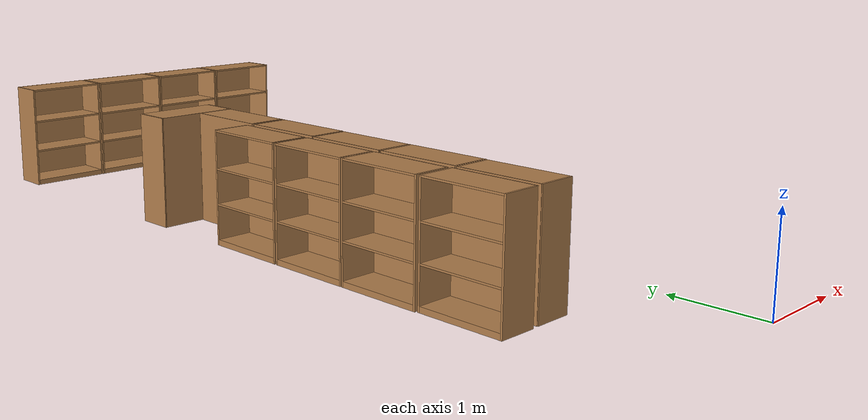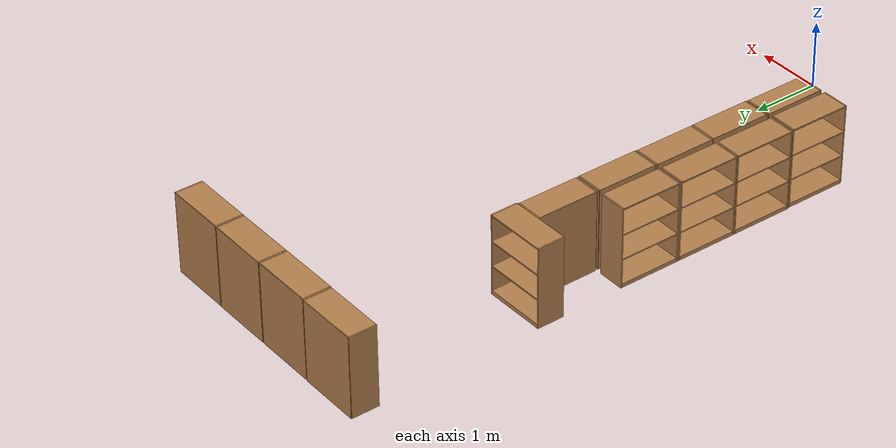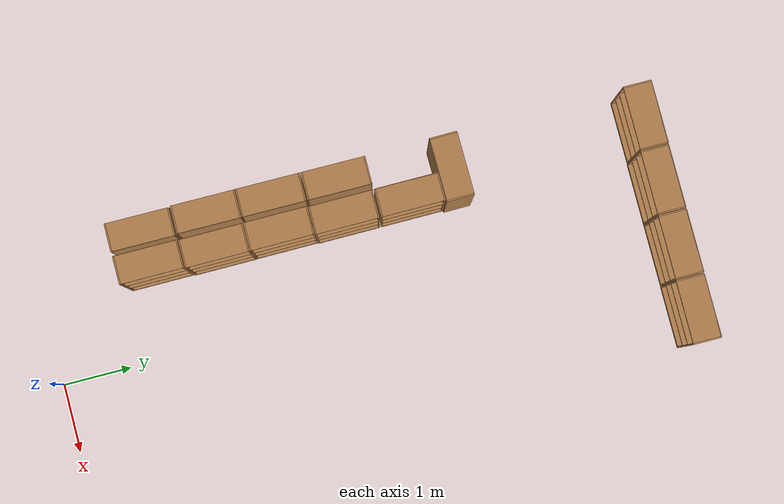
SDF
<sdf version="1.7">
 <world name="default">
  <model name="bookshelf_clone_clone_5">
   <static>1</static>
   <link name="link">
    <inertial><mass>1</mass></inertial>
    <collision name="back">
     <pose>0 0.005 0.6 0 -0 0</pose>
     <geometry><box><size>0.9 0.01 1.2</size></box></geometry>
    </collision>
    <visual name="visual1">
     <pose>0 0.005 0.6 0 -0 0</pose>
     <geometry><box><size>0.9 0.01 1.2</size></box></geometry>
     <material>
      <script><uri>file://media/materials/scripts/gazebo.material</uri><name>Gazebo/Wood</name></script>
     </material>
    </visual>
    <collision name="left_side">
     <pose>0.45 -0.195 0.6 0 -0 0</pose>
     <geometry><box><size>0.02 0.4 1.2</size></box></geometry>
    </collision>
    <visual name="visual2">
     <pose>0.45 -0.195 0.6 0 -0 0</pose>
     <geometry><box><size>0.02 0.4 1.2</size></box></geometry>
     <material>
      <script><uri>file://media/materials/scripts/gazebo.material</uri><name>Gazebo/Wood</name></script>
     </material>
    </visual>
    <collision name="right_side">
     <pose>-0.45 -0.195 0.6 0 -0 0</pose>
     <geometry><box><size>0.02 0.4 1.2</size></box></geometry>
    </collision>
    <visual name="visual3">
     <pose>-0.45 -0.195 0.6 0 -0 0</pose>
     <geometry><box><size>0.02 0.4 1.2</size></box></geometry>
     <material>
      <script><uri>file://media/materials/scripts/gazebo.material</uri><name>Gazebo/Wood</name></script>
     </material>
    </visual>
    <collision name="bottom">
     <pose>0 -0.195 0.03 0 -0 0</pose>
     <geometry><box><size>0.88 0.4 0.06</size></box></geometry>
    </collision>
    <visual name="visual4">
     <pose>0 -0.195 0.03 0 -0 0</pose>
     <geometry><box><size>0.88 0.4 0.06</size></box></geometry>
     <material>
      <script><uri>file://media/materials/scripts/gazebo.material</uri><name>Gazebo/Wood</name></script>
     </material>
    </visual>
    <collision name="top">
     <pose>0 -0.195 1.19 0 -0 0</pose>
     <geometry><box><size>0.88 0.4 0.02</size></box></geometry>
    </collision>
    <visual name="visual5">
     <pose>0 -0.195 1.19 0 -0 0</pose>
     <geometry><box><size>0.88 0.4 0.02</size></box></geometry>
     <material>
      <script><uri>file://media/materials/scripts/gazebo.material</uri><name>Gazebo/Wood</name></script>
     </material>
    </visual>
    <collision name="low_shelf">
     <pose>0 -0.195 0.43 0 -0 0</pose>
     <geometry><box><size>0.88 0.4 0.02</size></box></geometry>
    </collision>
    <visual name="visual6">
     <pose>0 -0.195 0.43 0 -0 0</pose>
     <geometry><box><size>0.88 0.4 0.02</size></box></geometry>
     <material>
      <script><uri>file://media/materials/scripts/gazebo.material</uri><name>Gazebo/Wood</name></script>
     </material>
    </visual>
    <collision name="high_shelf">
     <pose>0 -0.195 0.8 0 -0 0</pose>
     <geometry><box><size>0.88 0.4 0.02</size></box></geometry>
    </collision>
    <visual name="visual7">
     <pose>0 -0.195 0.8 0 -0 0</pose>
     <geometry><box><size>0.88 0.4 0.02</size></box></geometry>
     <material>
      <script><uri>file://media/materials/scripts/gazebo.material</uri><name>Gazebo/Wood</name></script>
     </material>
    </visual>
   </link>
   <pose>-1.53341 9.11755 0 0 -0 0</pose>
  </model>
  <model name="bookshelf_clone_clone_6">
   <static>1</static>
   <link name="link">
    <inertial><mass>1</mass></inertial>
    <collision name="back">
     <pose>0 0.005 0.6 0 -0 0</pose>
     <geometry><box><size>0.9 0.01 1.2</size></box></geometry>
    </collision>
    <visual name="visual1">
     <pose>0 0.005 0.6 0 -0 0</pose>
     <geometry><box><size>0.9 0.01 1.2</size></box></geometry>
     <material>
      <script><uri>file://media/materials/scripts/gazebo.material</uri><name>Gazebo/Wood</name></script>
     </material>
    </visual>
    <collision name="left_side">
     <pose>0.45 -0.195 0.6 0 -0 0</pose>
     <geometry><box><size>0.02 0.4 1.2</size></box></geometry>
    </collision>
    <visual name="visual2">
     <pose>0.45 -0.195 0.6 0 -0 0</pose>
     <geometry><box><size>0.02 0.4 1.2</size></box></geometry>
     <material>
      <script><uri>file://media/materials/scripts/gazebo.material</uri><name>Gazebo/Wood</name></script>
     </material>
    </visual>
    <collision name="right_side">
     <pose>-0.45 -0.195 0.6 0 -0 0</pose>
     <geometry><box><size>0.02 0.4 1.2</size></box></geometry>
    </collision>
    <visual name="visual3">
     <pose>-0.45 -0.195 0.6 0 -0 0</pose>
     <geometry><box><size>0.02 0.4 1.2</size></box></geometry>
     <material>
      <script><uri>file://media/materials/scripts/gazebo.material</uri><name>Gazebo/Wood</name></script>
     </material>
    </visual>
    <collision name="bottom">
     <pose>0 -0.195 0.03 0 -0 0</pose>
     <geometry><box><size>0.88 0.4 0.06</size></box></geometry>
    </collision>
    <visual name="visual4">
     <pose>0 -0.195 0.03 0 -0 0</pose>
     <geometry><box><size>0.88 0.4 0.06</size></box></geometry>
     <material>
      <script><uri>file://media/materials/scripts/gazebo.material</uri><name>Gazebo/Wood</name></script>
     </material>
    </visual>
    <collision name="top">
     <pose>0 -0.195 1.19 0 -0 0</pose>
     <geometry><box><size>0.88 0.4 0.02</size></box></geometry>
    </collision>
    <visual name="visual5">
     <pose>0 -0.195 1.19 0 -0 0</pose>
     <geometry><box><size>0.88 0.4 0.02</size></box></geometry>
     <material>
      <script><uri>file://media/materials/scripts/gazebo.material</uri><name>Gazebo/Wood</name></script>
     </material>
    </visual>
    <collision name="low_shelf">
     <pose>0 -0.195 0.43 0 -0 0</pose>
     <geometry><box><size>0.88 0.4 0.02</size></box></geometry>
    </collision>
    <visual name="visual6">
     <pose>0 -0.195 0.43 0 -0 0</pose>
     <geometry><box><size>0.88 0.4 0.02</size></box></geometry>
     <material>
      <script><uri>file://media/materials/scripts/gazebo.material</uri><name>Gazebo/Wood</name></script>
     </material>
    </visual>
    <collision name="high_shelf">
     <pose>0 -0.195 0.8 0 -0 0</pose>
     <geometry><box><size>0.88 0.4 0.02</size></box></geometry>
    </collision>
    <visual name="visual7">
     <pose>0 -0.195 0.8 0 -0 0</pose>
     <geometry><box><size>0.88 0.4 0.02</size></box></geometry>
     <material>
      <script><uri>file://media/materials/scripts/gazebo.material</uri><name>Gazebo/Wood</name></script>
     </material>
    </visual>
   </link>
   <pose>-0.606232 9.11229 0 0 -0 0</pose>
  </model>
  <model name="bookshelf_clone_clone_7">
   <static>1</static>
   <link name="link">
    <inertial><mass>1</mass></inertial>
    <collision name="back">
     <pose>0 0.005 0.6 0 -0 0</pose>
     <geometry><box><size>0.9 0.01 1.2</size></box></geometry>
    </collision>
    <visual name="visual1">
     <pose>0 0.005 0.6 0 -0 0</pose>
     <geometry><box><size>0.9 0.01 1.2</size></box></geometry>
     <material>
      <script><uri>file://media/materials/scripts/gazebo.material</uri><name>Gazebo/Wood</name></script>
     </material>
    </visual>
    <collision name="left_side">
     <pose>0.45 -0.195 0.6 0 -0 0</pose>
     <geometry><box><size>0.02 0.4 1.2</size></box></geometry>
    </collision>
    <visual name="visual2">
     <pose>0.45 -0.195 0.6 0 -0 0</pose>
     <geometry><box><size>0.02 0.4 1.2</size></box></geometry>
     <material>
      <script><uri>file://media/materials/scripts/gazebo.material</uri><name>Gazebo/Wood</name></script>
     </material>
    </visual>
    <collision name="right_side">
     <pose>-0.45 -0.195 0.6 0 -0 0</pose>
     <geometry><box><size>0.02 0.4 1.2</size></box></geometry>
    </collision>
    <visual name="visual3">
     <pose>-0.45 -0.195 0.6 0 -0 0</pose>
     <geometry><box><size>0.02 0.4 1.2</size></box></geometry>
     <material>
      <script><uri>file://media/materials/scripts/gazebo.material</uri><name>Gazebo/Wood</name></script>
     </material>
    </visual>
    <collision name="bottom">
     <pose>0 -0.195 0.03 0 -0 0</pose>
     <geometry><box><size>0.88 0.4 0.06</size></box></geometry>
    </collision>
    <visual name="visual4">
     <pose>0 -0.195 0.03 0 -0 0</pose>
     <geometry><box><size>0.88 0.4 0.06</size></box></geometry>
     <material>
      <script><uri>file://media/materials/scripts/gazebo.material</uri><name>Gazebo/Wood</name></script>
     </material>
    </visual>
    <collision name="top">
     <pose>0 -0.195 1.19 0 -0 0</pose>
     <geometry><box><size>0.88 0.4 0.02</size></box></geometry>
    </collision>
    <visual name="visual5">
     <pose>0 -0.195 1.19 0 -0 0</pose>
     <geometry><box><size>0.88 0.4 0.02</size></box></geometry>
     <material>
      <script><uri>file://media/materials/scripts/gazebo.material</uri><name>Gazebo/Wood</name></script>
     </material>
    </visual>
    <collision name="low_shelf">
     <pose>0 -0.195 0.43 0 -0 0</pose>
     <geometry><box><size>0.88 0.4 0.02</size></box></geometry>
    </collision>
    <visual name="visual6">
     <pose>0 -0.195 0.43 0 -0 0</pose>
     <geometry><box><size>0.88 0.4 0.02</size></box></geometry>
     <material>
      <script><uri>file://media/materials/scripts/gazebo.material</uri><name>Gazebo/Wood</name></script>
     </material>
    </visual>
    <collision name="high_shelf">
     <pose>0 -0.195 0.8 0 -0 0</pose>
     <geometry><box><size>0.88 0.4 0.02</size></box></geometry>
    </collision>
    <visual name="visual7">
     <pose>0 -0.195 0.8 0 -0 0</pose>
     <geometry><box><size>0.88 0.4 0.02</size></box></geometry>
     <material>
      <script><uri>file://media/materials/scripts/gazebo.material</uri><name>Gazebo/Wood</name></script>
     </material>
    </visual>
   </link>
   <pose>0.320661 9.11239 0 0 -0 0</pose>
  </model>
  <model name="bookshelf_clone_clone_8">
   <static>1</static>
   <link name="link">
    <inertial><mass>1</mass></inertial>
    <collision name="back">
     <pose>0 0.005 0.6 0 -0 0</pose>
     <geometry><box><size>0.9 0.01 1.2</size></box></geometry>
    </collision>
    <visual name="visual1">
     <pose>0 0.005 0.6 0 -0 0</pose>
     <geometry><box><size>0.9 0.01 1.2</size></box></geometry>
     <material>
      <script><uri>file://media/materials/scripts/gazebo.material</uri><name>Gazebo/Wood</name></script>
     </material>
    </visual>
    <collision name="left_side">
     <pose>0.45 -0.195 0.6 0 -0 0</pose>
     <geometry><box><size>0.02 0.4 1.2</size></box></geometry>
    </collision>
    <visual name="visual2">
     <pose>0.45 -0.195 0.6 0 -0 0</pose>
     <geometry><box><size>0.02 0.4 1.2</size></box></geometry>
     <material>
      <script><uri>file://media/materials/scripts/gazebo.material</uri><name>Gazebo/Wood</name></script>
     </material>
    </visual>
    <collision name="right_side">
     <pose>-0.45 -0.195 0.6 0 -0 0</pose>
     <geometry><box><size>0.02 0.4 1.2</size></box></geometry>
    </collision>
    <visual name="visual3">
     <pose>-0.45 -0.195 0.6 0 -0 0</pose>
     <geometry><box><size>0.02 0.4 1.2</size></box></geometry>
     <material>
      <script><uri>file://media/materials/scripts/gazebo.material</uri><name>Gazebo/Wood</name></script>
     </material>
    </visual>
    <collision name="bottom">
     <pose>0 -0.195 0.03 0 -0 0</pose>
     <geometry><box><size>0.88 0.4 0.06</size></box></geometry>
    </collision>
    <visual name="visual4">
     <pose>0 -0.195 0.03 0 -0 0</pose>
     <geometry><box><size>0.88 0.4 0.06</size></box></geometry>
     <material>
      <script><uri>file://media/materials/scripts/gazebo.material</uri><name>Gazebo/Wood</name></script>
     </material>
    </visual>
    <collision name="top">
     <pose>0 -0.195 1.19 0 -0 0</pose>
     <geometry><box><size>0.88 0.4 0.02</size></box></geometry>
    </collision>
    <visual name="visual5">
     <pose>0 -0.195 1.19 0 -0 0</pose>
     <geometry><box><size>0.88 0.4 0.02</size></box></geometry>
     <material>
      <script><uri>file://media/materials/scripts/gazebo.material</uri><name>Gazebo/Wood</name></script>
     </material>
    </visual>
    <collision name="low_shelf">
     <pose>0 -0.195 0.43 0 -0 0</pose>
     <geometry><box><size>0.88 0.4 0.02</size></box></geometry>
    </collision>
    <visual name="visual6">
     <pose>0 -0.195 0.43 0 -0 0</pose>
     <geometry><box><size>0.88 0.4 0.02</size></box></geometry>
     <material>
      <script><uri>file://media/materials/scripts/gazebo.material</uri><name>Gazebo/Wood</name></script>
     </material>
    </visual>
    <collision name="high_shelf">
     <pose>0 -0.195 0.8 0 -0 0</pose>
     <geometry><box><size>0.88 0.4 0.02</size></box></geometry>
    </collision>
    <visual name="visual7">
     <pose>0 -0.195 0.8 0 -0 0</pose>
     <geometry><box><size>0.88 0.4 0.02</size></box></geometry>
     <material>
      <script><uri>file://media/materials/scripts/gazebo.material</uri><name>Gazebo/Wood</name></script>
     </material>
    </visual>
   </link>
   <pose>1.24822 9.10984 0 0 -0 0</pose>
  </model>
  <model name="bookshelf_clone_1_clone_clone_6_clone">
   <static>1</static>
   <link name="link">
    <inertial><mass>1</mass></inertial>
    <collision name="back">
     <pose>0 0.005 0.6 0 -0 0</pose>
     <geometry><box><size>0.9 0.01 1.2</size></box></geometry>
    </collision>
    <visual name="visual1">
     <pose>0 0.005 0.6 0 -0 0</pose>
     <geometry><box><size>0.9 0.01 1.2</size></box></geometry>
     <material>
      <script><uri>file://media/materials/scripts/gazebo.material</uri><name>Gazebo/Wood</name></script>
     </material>
    </visual>
    <collision name="left_side">
     <pose>0.45 -0.195 0.6 0 -0 0</pose>
     <geometry><box><size>0.02 0.4 1.2</size></box></geometry>
    </collision>
    <visual name="visual2">
     <pose>0.45 -0.195 0.6 0 -0 0</pose>
     <geometry><box><size>0.02 0.4 1.2</size></box></geometry>
     <material>
      <script><uri>file://media/materials/scripts/gazebo.material</uri><name>Gazebo/Wood</name></script>
     </material>
    </visual>
    <collision name="right_side">
     <pose>-0.45 -0.195 0.6 0 -0 0</pose>
     <geometry><box><size>0.02 0.4 1.2</size></box></geometry>
    </collision>
    <visual name="visual3">
     <pose>-0.45 -0.195 0.6 0 -0 0</pose>
     <geometry><box><size>0.02 0.4 1.2</size></box></geometry>
     <material>
      <script><uri>file://media/materials/scripts/gazebo.material</uri><name>Gazebo/Wood</name></script>
     </material>
    </visual>
    <collision name="bottom">
     <pose>0 -0.195 0.03 0 -0 0</pose>
     <geometry><box><size>0.88 0.4 0.06</size></box></geometry>
    </collision>
    <visual name="visual4">
     <pose>0 -0.195 0.03 0 -0 0</pose>
     <geometry><box><size>0.88 0.4 0.06</size></box></geometry>
     <material>
      <script><uri>file://media/materials/scripts/gazebo.material</uri><name>Gazebo/Wood</name></script>
     </material>
    </visual>
    <collision name="top">
     <pose>0 -0.195 1.19 0 -0 0</pose>
     <geometry><box><size>0.88 0.4 0.02</size></box></geometry>
    </collision>
    <visual name="visual5">
     <pose>0 -0.195 1.19 0 -0 0</pose>
     <geometry><box><size>0.88 0.4 0.02</size></box></geometry>
     <material>
      <script><uri>file://media/materials/scripts/gazebo.material</uri><name>Gazebo/Wood</name></script>
     </material>
    </visual>
    <collision name="low_shelf">
     <pose>0 -0.195 0.43 0 -0 0</pose>
     <geometry><box><size>0.88 0.4 0.02</size></box></geometry>
    </collision>
    <visual name="visual6">
     <pose>0 -0.195 0.43 0 -0 0</pose>
     <geometry><box><size>0.88 0.4 0.02</size></box></geometry>
     <material>
      <script><uri>file://media/materials/scripts/gazebo.material</uri><name>Gazebo/Wood</name></script>
     </material>
    </visual>
    <collision name="high_shelf">
     <pose>0 -0.195 0.8 0 -0 0</pose>
     <geometry><box><size>0.88 0.4 0.02</size></box></geometry>
    </collision>
    <visual name="visual7">
     <pose>0 -0.195 0.8 0 -0 0</pose>
     <geometry><box><size>0.88 0.4 0.02</size></box></geometry>
     <material>
      <script><uri>file://media/materials/scripts/gazebo.material</uri><name>Gazebo/Wood</name></script>
     </material>
    </visual>
   </link>
   <pose>-1.50903 5.94094 0 0 0 -3.12822</pose>
  </model>
  <model name="bookshelf_clone_2_clone_10">
   <static>1</static>
   <link name="link">
    <inertial><mass>1</mass></inertial>
    <collision name="back">
     <pose>0 0.005 0.6 0 -0 0</pose>
     <geometry><box><size>0.9 0.01 1.2</size></box></geometry>
    </collision>
    <visual name="visual1">
     <pose>0 0.005 0.6 0 -0 0</pose>
     <geometry><box><size>0.9 0.01 1.2</size></box></geometry>
     <material>
      <script><uri>file://media/materials/scripts/gazebo.material</uri><name>Gazebo/Wood</name></script>
     </material>
    </visual>
    <collision name="left_side">
     <pose>0.45 -0.195 0.6 0 -0 0</pose>
     <geometry><box><size>0.02 0.4 1.2</size></box></geometry>
    </collision>
    <visual name="visual2">
     <pose>0.45 -0.195 0.6 0 -0 0</pose>
     <geometry><box><size>0.02 0.4 1.2</size></box></geometry>
     <material>
      <script><uri>file://media/materials/scripts/gazebo.material</uri><name>Gazebo/Wood</name></script>
     </material>
    </visual>
    <collision name="right_side">
     <pose>-0.45 -0.195 0.6 0 -0 0</pose>
     <geometry><box><size>0.02 0.4 1.2</size></box></geometry>
    </collision>
    <visual name="visual3">
     <pose>-0.45 -0.195 0.6 0 -0 0</pose>
     <geometry><box><size>0.02 0.4 1.2</size></box></geometry>
     <material>
      <script><uri>file://media/materials/scripts/gazebo.material</uri><name>Gazebo/Wood</name></script>
     </material>
    </visual>
    <collision name="bottom">
     <pose>0 -0.195 0.03 0 -0 0</pose>
     <geometry><box><size>0.88 0.4 0.06</size></box></geometry>
    </collision>
    <visual name="visual4">
     <pose>0 -0.195 0.03 0 -0 0</pose>
     <geometry><box><size>0.88 0.4 0.06</size></box></geometry>
     <material>
      <script><uri>file://media/materials/scripts/gazebo.material</uri><name>Gazebo/Wood</name></script>
     </material>
    </visual>
    <collision name="top">
     <pose>0 -0.195 1.19 0 -0 0</pose>
     <geometry><box><size>0.88 0.4 0.02</size></box></geometry>
    </collision>
    <visual name="visual5">
     <pose>0 -0.195 1.19 0 -0 0</pose>
     <geometry><box><size>0.88 0.4 0.02</size></box></geometry>
     <material>
      <script><uri>file://media/materials/scripts/gazebo.material</uri><name>Gazebo/Wood</name></script>
     </material>
    </visual>
    <collision name="low_shelf">
     <pose>0 -0.195 0.43 0 -0 0</pose>
     <geometry><box><size>0.88 0.4 0.02</size></box></geometry>
    </collision>
    <visual name="visual6">
     <pose>0 -0.195 0.43 0 -0 0</pose>
     <geometry><box><size>0.88 0.4 0.02</size></box></geometry>
     <material>
      <script><uri>file://media/materials/scripts/gazebo.material</uri><name>Gazebo/Wood</name></script>
     </material>
    </visual>
    <collision name="high_shelf">
     <pose>0 -0.195 0.8 0 -0 0</pose>
     <geometry><box><size>0.88 0.4 0.02</size></box></geometry>
    </collision>
    <visual name="visual7">
     <pose>0 -0.195 0.8 0 -0 0</pose>
     <geometry><box><size>0.88 0.4 0.02</size></box></geometry>
     <material>
      <script><uri>file://media/materials/scripts/gazebo.material</uri><name>Gazebo/Wood</name></script>
     </material>
    </visual>
   </link>
   <pose>-1.54578 1.74274 0 0 0 -1.57136</pose>
  </model>
  <model name="bookshelf_clone_2_clone_11">
   <static>1</static>
   <link name="link">
    <inertial><mass>1</mass></inertial>
    <collision name="back">
     <pose>0 0.005 0.6 0 -0 0</pose>
     <geometry><box><size>0.9 0.01 1.2</size></box></geometry>
    </collision>
    <visual name="visual1">
     <pose>0 0.005 0.6 0 -0 0</pose>
     <geometry><box><size>0.9 0.01 1.2</size></box></geometry>
     <material>
      <script><uri>file://media/materials/scripts/gazebo.material</uri><name>Gazebo/Wood</name></script>
     </material>
    </visual>
    <collision name="left_side">
     <pose>0.45 -0.195 0.6 0 -0 0</pose>
     <geometry><box><size>0.02 0.4 1.2</size></box></geometry>
    </collision>
    <visual name="visual2">
     <pose>0.45 -0.195 0.6 0 -0 0</pose>
     <geometry><box><size>0.02 0.4 1.2</size></box></geometry>
     <material>
      <script><uri>file://media/materials/scripts/gazebo.material</uri><name>Gazebo/Wood</name></script>
     </material>
    </visual>
    <collision name="right_side">
     <pose>-0.45 -0.195 0.6 0 -0 0</pose>
     <geometry><box><size>0.02 0.4 1.2</size></box></geometry>
    </collision>
    <visual name="visual3">
     <pose>-0.45 -0.195 0.6 0 -0 0</pose>
     <geometry><box><size>0.02 0.4 1.2</size></box></geometry>
     <material>
      <script><uri>file://media/materials/scripts/gazebo.material</uri><name>Gazebo/Wood</name></script>
     </material>
    </visual>
    <collision name="bottom">
     <pose>0 -0.195 0.03 0 -0 0</pose>
     <geometry><box><size>0.88 0.4 0.06</size></box></geometry>
    </collision>
    <visual name="visual4">
     <pose>0 -0.195 0.03 0 -0 0</pose>
     <geometry><box><size>0.88 0.4 0.06</size></box></geometry>
     <material>
      <script><uri>file://media/materials/scripts/gazebo.material</uri><name>Gazebo/Wood</name></script>
     </material>
    </visual>
    <collision name="top">
     <pose>0 -0.195 1.19 0 -0 0</pose>
     <geometry><box><size>0.88 0.4 0.02</size></box></geometry>
    </collision>
    <visual name="visual5">
     <pose>0 -0.195 1.19 0 -0 0</pose>
     <geometry><box><size>0.88 0.4 0.02</size></box></geometry>
     <material>
      <script><uri>file://media/materials/scripts/gazebo.material</uri><name>Gazebo/Wood</name></script>
     </material>
    </visual>
    <collision name="low_shelf">
     <pose>0 -0.195 0.43 0 -0 0</pose>
     <geometry><box><size>0.88 0.4 0.02</size></box></geometry>
    </collision>
    <visual name="visual6">
     <pose>0 -0.195 0.43 0 -0 0</pose>
     <geometry><box><size>0.88 0.4 0.02</size></box></geometry>
     <material>
      <script><uri>file://media/materials/scripts/gazebo.material</uri><name>Gazebo/Wood</name></script>
     </material>
    </visual>
    <collision name="high_shelf">
     <pose>0 -0.195 0.8 0 -0 0</pose>
     <geometry><box><size>0.88 0.4 0.02</size></box></geometry>
    </collision>
    <visual name="visual7">
     <pose>0 -0.195 0.8 0 -0 0</pose>
     <geometry><box><size>0.88 0.4 0.02</size></box></geometry>
     <material>
      <script><uri>file://media/materials/scripts/gazebo.material</uri><name>Gazebo/Wood</name></script>
     </material>
    </visual>
   </link>
   <pose>-1.55871 2.68408 0 0 0 -1.57136</pose>
  </model>
  <model name="bookshelf_clone_2_clone_12">
   <static>1</static>
   <link name="link">
    <inertial><mass>1</mass></inertial>
    <collision name="back">
     <pose>0 0.005 0.6 0 -0 0</pose>
     <geometry><box><size>0.9 0.01 1.2</size></box></geometry>
    </collision>
    <visual name="visual1">
     <pose>0 0.005 0.6 0 -0 0</pose>
     <geometry><box><size>0.9 0.01 1.2</size></box></geometry>
     <material>
      <script><uri>file://media/materials/scripts/gazebo.material</uri><name>Gazebo/Wood</name></script>
     </material>
    </visual>
    <collision name="left_side">
     <pose>0.45 -0.195 0.6 0 -0 0</pose>
     <geometry><box><size>0.02 0.4 1.2</size></box></geometry>
    </collision>
    <visual name="visual2">
     <pose>0.45 -0.195 0.6 0 -0 0</pose>
     <geometry><box><size>0.02 0.4 1.2</size></box></geometry>
     <material>
      <script><uri>file://media/materials/scripts/gazebo.material</uri><name>Gazebo/Wood</name></script>
     </material>
    </visual>
    <collision name="right_side">
     <pose>-0.45 -0.195 0.6 0 -0 0</pose>
     <geometry><box><size>0.02 0.4 1.2</size></box></geometry>
    </collision>
    <visual name="visual3">
     <pose>-0.45 -0.195 0.6 0 -0 0</pose>
     <geometry><box><size>0.02 0.4 1.2</size></box></geometry>
     <material>
      <script><uri>file://media/materials/scripts/gazebo.material</uri><name>Gazebo/Wood</name></script>
     </material>
    </visual>
    <collision name="bottom">
     <pose>0 -0.195 0.03 0 -0 0</pose>
     <geometry><box><size>0.88 0.4 0.06</size></box></geometry>
    </collision>
    <visual name="visual4">
     <pose>0 -0.195 0.03 0 -0 0</pose>
     <geometry><box><size>0.88 0.4 0.06</size></box></geometry>
     <material>
      <script><uri>file://media/materials/scripts/gazebo.material</uri><name>Gazebo/Wood</name></script>
     </material>
    </visual>
    <collision name="top">
     <pose>0 -0.195 1.19 0 -0 0</pose>
     <geometry><box><size>0.88 0.4 0.02</size></box></geometry>
    </collision>
    <visual name="visual5">
     <pose>0 -0.195 1.19 0 -0 0</pose>
     <geometry><box><size>0.88 0.4 0.02</size></box></geometry>
     <material>
      <script><uri>file://media/materials/scripts/gazebo.material</uri><name>Gazebo/Wood</name></script>
     </material>
    </visual>
    <collision name="low_shelf">
     <pose>0 -0.195 0.43 0 -0 0</pose>
     <geometry><box><size>0.88 0.4 0.02</size></box></geometry>
    </collision>
    <visual name="visual6">
     <pose>0 -0.195 0.43 0 -0 0</pose>
     <geometry><box><size>0.88 0.4 0.02</size></box></geometry>
     <material>
      <script><uri>file://media/materials/scripts/gazebo.material</uri><name>Gazebo/Wood</name></script>
     </material>
    </visual>
    <collision name="high_shelf">
     <pose>0 -0.195 0.8 0 -0 0</pose>
     <geometry><box><size>0.88 0.4 0.02</size></box></geometry>
    </collision>
    <visual name="visual7">
     <pose>0 -0.195 0.8 0 -0 0</pose>
     <geometry><box><size>0.88 0.4 0.02</size></box></geometry>
     <material>
      <script><uri>file://media/materials/scripts/gazebo.material</uri><name>Gazebo/Wood</name></script>
     </material>
    </visual>
   </link>
   <pose>-1.55963 3.60953 0 0 0 -1.57136</pose>
  </model>
  <model name="bookshelf_clone_2_clone_13">
   <static>1</static>
   <link name="link">
    <inertial><mass>1</mass></inertial>
    <collision name="back">
     <pose>0 0.005 0.6 0 -0 0</pose>
     <geometry><box><size>0.9 0.01 1.2</size></box></geometry>
    </collision>
    <visual name="visual1">
     <pose>0 0.005 0.6 0 -0 0</pose>
     <geometry><box><size>0.9 0.01 1.2</size></box></geometry>
     <material>
      <script><uri>file://media/materials/scripts/gazebo.material</uri><name>Gazebo/Wood</name></script>
     </material>
    </visual>
    <collision name="left_side">
     <pose>0.45 -0.195 0.6 0 -0 0</pose>
     <geometry><box><size>0.02 0.4 1.2</size></box></geometry>
    </collision>
    <visual name="visual2">
     <pose>0.45 -0.195 0.6 0 -0 0</pose>
     <geometry><box><size>0.02 0.4 1.2</size></box></geometry>
     <material>
      <script><uri>file://media/materials/scripts/gazebo.material</uri><name>Gazebo/Wood</name></script>
     </material>
    </visual>
    <collision name="right_side">
     <pose>-0.45 -0.195 0.6 0 -0 0</pose>
     <geometry><box><size>0.02 0.4 1.2</size></box></geometry>
    </collision>
    <visual name="visual3">
     <pose>-0.45 -0.195 0.6 0 -0 0</pose>
     <geometry><box><size>0.02 0.4 1.2</size></box></geometry>
     <material>
      <script><uri>file://media/materials/scripts/gazebo.material</uri><name>Gazebo/Wood</name></script>
     </material>
    </visual>
    <collision name="bottom">
     <pose>0 -0.195 0.03 0 -0 0</pose>
     <geometry><box><size>0.88 0.4 0.06</size></box></geometry>
    </collision>
    <visual name="visual4">
     <pose>0 -0.195 0.03 0 -0 0</pose>
     <geometry><box><size>0.88 0.4 0.06</size></box></geometry>
     <material>
      <script><uri>file://media/materials/scripts/gazebo.material</uri><name>Gazebo/Wood</name></script>
     </material>
    </visual>
    <collision name="top">
     <pose>0 -0.195 1.19 0 -0 0</pose>
     <geometry><box><size>0.88 0.4 0.02</size></box></geometry>
    </collision>
    <visual name="visual5">
     <pose>0 -0.195 1.19 0 -0 0</pose>
     <geometry><box><size>0.88 0.4 0.02</size></box></geometry>
     <material>
      <script><uri>file://media/materials/scripts/gazebo.material</uri><name>Gazebo/Wood</name></script>
     </material>
    </visual>
    <collision name="low_shelf">
     <pose>0 -0.195 0.43 0 -0 0</pose>
     <geometry><box><size>0.88 0.4 0.02</size></box></geometry>
    </collision>
    <visual name="visual6">
     <pose>0 -0.195 0.43 0 -0 0</pose>
     <geometry><box><size>0.88 0.4 0.02</size></box></geometry>
     <material>
      <script><uri>file://media/materials/scripts/gazebo.material</uri><name>Gazebo/Wood</name></script>
     </material>
    </visual>
    <collision name="high_shelf">
     <pose>0 -0.195 0.8 0 -0 0</pose>
     <geometry><box><size>0.88 0.4 0.02</size></box></geometry>
    </collision>
    <visual name="visual7">
     <pose>0 -0.195 0.8 0 -0 0</pose>
     <geometry><box><size>0.88 0.4 0.02</size></box></geometry>
     <material>
      <script><uri>file://media/materials/scripts/gazebo.material</uri><name>Gazebo/Wood</name></script>
     </material>
    </visual>
   </link>
   <pose>-1.55946 4.54746 0 0 0 -1.57136</pose>
  </model>
  <model name="bookshelf_clone_2_clone_clone_0_clone_3_clone">
   <static>1</static>
   <link name="link">
    <inertial><mass>1</mass></inertial>
    <collision name="back">
     <pose>0 0.005 0.6 0 -0 0</pose>
     <geometry><box><size>0.9 0.01 1.2</size></box></geometry>
    </collision>
    <visual name="visual1">
     <pose>0 0.005 0.6 0 -0 0</pose>
     <geometry><box><size>0.9 0.01 1.2</size></box></geometry>
     <material>
      <script><uri>file://media/materials/scripts/gazebo.material</uri><name>Gazebo/Wood</name></script>
     </material>
    </visual>
    <collision name="left_side">
     <pose>0.45 -0.195 0.6 0 -0 0</pose>
     <geometry><box><size>0.02 0.4 1.2</size></box></geometry>
    </collision>
    <visual name="visual2">
     <pose>0.45 -0.195 0.6 0 -0 0</pose>
     <geometry><box><size>0.02 0.4 1.2</size></box></geometry>
     <material>
      <script><uri>file://media/materials/scripts/gazebo.material</uri><name>Gazebo/Wood</name></script>
     </material>
    </visual>
    <collision name="right_side">
     <pose>-0.45 -0.195 0.6 0 -0 0</pose>
     <geometry><box><size>0.02 0.4 1.2</size></box></geometry>
    </collision>
    <visual name="visual3">
     <pose>-0.45 -0.195 0.6 0 -0 0</pose>
     <geometry><box><size>0.02 0.4 1.2</size></box></geometry>
     <material>
      <script><uri>file://media/materials/scripts/gazebo.material</uri><name>Gazebo/Wood</name></script>
     </material>
    </visual>
    <collision name="bottom">
     <pose>0 -0.195 0.03 0 -0 0</pose>
     <geometry><box><size>0.88 0.4 0.06</size></box></geometry>
    </collision>
    <visual name="visual4">
     <pose>0 -0.195 0.03 0 -0 0</pose>
     <geometry><box><size>0.88 0.4 0.06</size></box></geometry>
     <material>
      <script><uri>file://media/materials/scripts/gazebo.material</uri><name>Gazebo/Wood</name></script>
     </material>
    </visual>
    <collision name="top">
     <pose>0 -0.195 1.19 0 -0 0</pose>
     <geometry><box><size>0.88 0.4 0.02</size></box></geometry>
    </collision>
    <visual name="visual5">
     <pose>0 -0.195 1.19 0 -0 0</pose>
     <geometry><box><size>0.88 0.4 0.02</size></box></geometry>
     <material>
      <script><uri>file://media/materials/scripts/gazebo.material</uri><name>Gazebo/Wood</name></script>
     </material>
    </visual>
    <collision name="low_shelf">
     <pose>0 -0.195 0.43 0 -0 0</pose>
     <geometry><box><size>0.88 0.4 0.02</size></box></geometry>
    </collision>
    <visual name="visual6">
     <pose>0 -0.195 0.43 0 -0 0</pose>
     <geometry><box><size>0.88 0.4 0.02</size></box></geometry>
     <material>
      <script><uri>file://media/materials/scripts/gazebo.material</uri><name>Gazebo/Wood</name></script>
     </material>
    </visual>
    <collision name="high_shelf">
     <pose>0 -0.195 0.8 0 -0 0</pose>
     <geometry><box><size>0.88 0.4 0.02</size></box></geometry>
    </collision>
    <visual name="visual7">
     <pose>0 -0.195 0.8 0 -0 0</pose>
     <geometry><box><size>0.88 0.4 0.02</size></box></geometry>
     <material>
      <script><uri>file://media/materials/scripts/gazebo.material</uri><name>Gazebo/Wood</name></script>
     </material>
    </visual>
   </link>
   <pose>-1.46847 5.47268 0 0 -0 1.57553</pose>
  </model>
  <model name="bookshelf_clone_2_clone_clone_0_clone_3_clone_clone">
   <static>1</static>
   <link name="link">
    <inertial><mass>1</mass></inertial>
    <collision name="back">
     <pose>0 0.005 0.6 0 -0 0</pose>
     <geometry><box><size>0.9 0.01 1.2</size></box></geometry>
    </collision>
    <visual name="visual1">
     <pose>0 0.005 0.6 0 -0 0</pose>
     <geometry><box><size>0.9 0.01 1.2</size></box></geometry>
     <material>
      <script><uri>file://media/materials/scripts/gazebo.material</uri><name>Gazebo/Wood</name></script>
     </material>
    </visual>
    <collision name="left_side">
     <pose>0.45 -0.195 0.6 0 -0 0</pose>
     <geometry><box><size>0.02 0.4 1.2</size></box></geometry>
    </collision>
    <visual name="visual2">
     <pose>0.45 -0.195 0.6 0 -0 0</pose>
     <geometry><box><size>0.02 0.4 1.2</size></box></geometry>
     <material>
      <script><uri>file://media/materials/scripts/gazebo.material</uri><name>Gazebo/Wood</name></script>
     </material>
    </visual>
    <collision name="right_side">
     <pose>-0.45 -0.195 0.6 0 -0 0</pose>
     <geometry><box><size>0.02 0.4 1.2</size></box></geometry>
    </collision>
    <visual name="visual3">
     <pose>-0.45 -0.195 0.6 0 -0 0</pose>
     <geometry><box><size>0.02 0.4 1.2</size></box></geometry>
     <material>
      <script><uri>file://media/materials/scripts/gazebo.material</uri><name>Gazebo/Wood</name></script>
     </material>
    </visual>
    <collision name="bottom">
     <pose>0 -0.195 0.03 0 -0 0</pose>
     <geometry><box><size>0.88 0.4 0.06</size></box></geometry>
    </collision>
    <visual name="visual4">
     <pose>0 -0.195 0.03 0 -0 0</pose>
     <geometry><box><size>0.88 0.4 0.06</size></box></geometry>
     <material>
      <script><uri>file://media/materials/scripts/gazebo.material</uri><name>Gazebo/Wood</name></script>
     </material>
    </visual>
    <collision name="top">
     <pose>0 -0.195 1.19 0 -0 0</pose>
     <geometry><box><size>0.88 0.4 0.02</size></box></geometry>
    </collision>
    <visual name="visual5">
     <pose>0 -0.195 1.19 0 -0 0</pose>
     <geometry><box><size>0.88 0.4 0.02</size></box></geometry>
     <material>
      <script><uri>file://media/materials/scripts/gazebo.material</uri><name>Gazebo/Wood</name></script>
     </material>
    </visual>
    <collision name="low_shelf">
     <pose>0 -0.195 0.43 0 -0 0</pose>
     <geometry><box><size>0.88 0.4 0.02</size></box></geometry>
    </collision>
    <visual name="visual6">
     <pose>0 -0.195 0.43 0 -0 0</pose>
     <geometry><box><size>0.88 0.4 0.02</size></box></geometry>
     <material>
      <script><uri>file://media/materials/scripts/gazebo.material</uri><name>Gazebo/Wood</name></script>
     </material>
    </visual>
    <collision name="high_shelf">
     <pose>0 -0.195 0.8 0 -0 0</pose>
     <geometry><box><size>0.88 0.4 0.02</size></box></geometry>
    </collision>
    <visual name="visual7">
     <pose>0 -0.195 0.8 0 -0 0</pose>
     <geometry><box><size>0.88 0.4 0.02</size></box></geometry>
     <material>
      <script><uri>file://media/materials/scripts/gazebo.material</uri><name>Gazebo/Wood</name></script>
     </material>
    </visual>
   </link>
   <pose>-1.46267 4.52754 0 0 -0 1.57553</pose>
  </model>
  <model name="bookshelf_clone_2_clone_clone_0_clone_3_clone_clone_0">
   <static>1</static>
   <link name="link">
    <inertial><mass>1</mass></inertial>
    <collision name="back">
     <pose>0 0.005 0.6 0 -0 0</pose>
     <geometry><box><size>0.9 0.01 1.2</size></box></geometry>
    </collision>
    <visual name="visual1">
     <pose>0 0.005 0.6 0 -0 0</pose>
     <geometry><box><size>0.9 0.01 1.2</size></box></geometry>
     <material>
      <script><uri>file://media/materials/scripts/gazebo.material</uri><name>Gazebo/Wood</name></script>
     </material>
    </visual>
    <collision name="left_side">
     <pose>0.45 -0.195 0.6 0 -0 0</pose>
     <geometry><box><size>0.02 0.4 1.2</size></box></geometry>
    </collision>
    <visual name="visual2">
     <pose>0.45 -0.195 0.6 0 -0 0</pose>
     <geometry><box><size>0.02 0.4 1.2</size></box></geometry>
     <material>
      <script><uri>file://media/materials/scripts/gazebo.material</uri><name>Gazebo/Wood</name></script>
     </material>
    </visual>
    <collision name="right_side">
     <pose>-0.45 -0.195 0.6 0 -0 0</pose>
     <geometry><box><size>0.02 0.4 1.2</size></box></geometry>
    </collision>
    <visual name="visual3">
     <pose>-0.45 -0.195 0.6 0 -0 0</pose>
     <geometry><box><size>0.02 0.4 1.2</size></box></geometry>
     <material>
      <script><uri>file://media/materials/scripts/gazebo.material</uri><name>Gazebo/Wood</name></script>
     </material>
    </visual>
    <collision name="bottom">
     <pose>0 -0.195 0.03 0 -0 0</pose>
     <geometry><box><size>0.88 0.4 0.06</size></box></geometry>
    </collision>
    <visual name="visual4">
     <pose>0 -0.195 0.03 0 -0 0</pose>
     <geometry><box><size>0.88 0.4 0.06</size></box></geometry>
     <material>
      <script><uri>file://media/materials/scripts/gazebo.material</uri><name>Gazebo/Wood</name></script>
     </material>
    </visual>
    <collision name="top">
     <pose>0 -0.195 1.19 0 -0 0</pose>
     <geometry><box><size>0.88 0.4 0.02</size></box></geometry>
    </collision>
    <visual name="visual5">
     <pose>0 -0.195 1.19 0 -0 0</pose>
     <geometry><box><size>0.88 0.4 0.02</size></box></geometry>
     <material>
      <script><uri>file://media/materials/scripts/gazebo.material</uri><name>Gazebo/Wood</name></script>
     </material>
    </visual>
    <collision name="low_shelf">
     <pose>0 -0.195 0.43 0 -0 0</pose>
     <geometry><box><size>0.88 0.4 0.02</size></box></geometry>
    </collision>
    <visual name="visual6">
     <pose>0 -0.195 0.43 0 -0 0</pose>
     <geometry><box><size>0.88 0.4 0.02</size></box></geometry>
     <material>
      <script><uri>file://media/materials/scripts/gazebo.material</uri><name>Gazebo/Wood</name></script>
     </material>
    </visual>
    <collision name="high_shelf">
     <pose>0 -0.195 0.8 0 -0 0</pose>
     <geometry><box><size>0.88 0.4 0.02</size></box></geometry>
    </collision>
    <visual name="visual7">
     <pose>0 -0.195 0.8 0 -0 0</pose>
     <geometry><box><size>0.88 0.4 0.02</size></box></geometry>
     <material>
      <script><uri>file://media/materials/scripts/gazebo.material</uri><name>Gazebo/Wood</name></script>
     </material>
    </visual>
   </link>
   <pose>-1.46847 3.60129 0 0 -0 1.57553</pose>
  </model>
  <model name="bookshelf_clone_2_clone_clone_0_clone_3_clone_clone_1">
   <static>1</static>
   <link name="link">
    <inertial><mass>1</mass></inertial>
    <collision name="back">
     <pose>0 0.005 0.6 0 -0 0</pose>
     <geometry><box><size>0.9 0.01 1.2</size></box></geometry>
    </collision>
    <visual name="visual1">
     <pose>0 0.005 0.6 0 -0 0</pose>
     <geometry><box><size>0.9 0.01 1.2</size></box></geometry>
     <material>
      <script><uri>file://media/materials/scripts/gazebo.material</uri><name>Gazebo/Wood</name></script>
     </material>
    </visual>
    <collision name="left_side">
     <pose>0.45 -0.195 0.6 0 -0 0</pose>
     <geometry><box><size>0.02 0.4 1.2</size></box></geometry>
    </collision>
    <visual name="visual2">
     <pose>0.45 -0.195 0.6 0 -0 0</pose>
     <geometry><box><size>0.02 0.4 1.2</size></box></geometry>
     <material>
      <script><uri>file://media/materials/scripts/gazebo.material</uri><name>Gazebo/Wood</name></script>
     </material>
    </visual>
    <collision name="right_side">
     <pose>-0.45 -0.195 0.6 0 -0 0</pose>
     <geometry><box><size>0.02 0.4 1.2</size></box></geometry>
    </collision>
    <visual name="visual3">
     <pose>-0.45 -0.195 0.6 0 -0 0</pose>
     <geometry><box><size>0.02 0.4 1.2</size></box></geometry>
     <material>
      <script><uri>file://media/materials/scripts/gazebo.material</uri><name>Gazebo/Wood</name></script>
     </material>
    </visual>
    <collision name="bottom">
     <pose>0 -0.195 0.03 0 -0 0</pose>
     <geometry><box><size>0.88 0.4 0.06</size></box></geometry>
    </collision>
    <visual name="visual4">
     <pose>0 -0.195 0.03 0 -0 0</pose>
     <geometry><box><size>0.88 0.4 0.06</size></box></geometry>
     <material>
      <script><uri>file://media/materials/scripts/gazebo.material</uri><name>Gazebo/Wood</name></script>
     </material>
    </visual>
    <collision name="top">
     <pose>0 -0.195 1.19 0 -0 0</pose>
     <geometry><box><size>0.88 0.4 0.02</size></box></geometry>
    </collision>
    <visual name="visual5">
     <pose>0 -0.195 1.19 0 -0 0</pose>
     <geometry><box><size>0.88 0.4 0.02</size></box></geometry>
     <material>
      <script><uri>file://media/materials/scripts/gazebo.material</uri><name>Gazebo/Wood</name></script>
     </material>
    </visual>
    <collision name="low_shelf">
     <pose>0 -0.195 0.43 0 -0 0</pose>
     <geometry><box><size>0.88 0.4 0.02</size></box></geometry>
    </collision>
    <visual name="visual6">
     <pose>0 -0.195 0.43 0 -0 0</pose>
     <geometry><box><size>0.88 0.4 0.02</size></box></geometry>
     <material>
      <script><uri>file://media/materials/scripts/gazebo.material</uri><name>Gazebo/Wood</name></script>
     </material>
    </visual>
    <collision name="high_shelf">
     <pose>0 -0.195 0.8 0 -0 0</pose>
     <geometry><box><size>0.88 0.4 0.02</size></box></geometry>
    </collision>
    <visual name="visual7">
     <pose>0 -0.195 0.8 0 -0 0</pose>
     <geometry><box><size>0.88 0.4 0.02</size></box></geometry>
     <material>
      <script><uri>file://media/materials/scripts/gazebo.material</uri><name>Gazebo/Wood</name></script>
     </material>
    </visual>
   </link>
   <pose>-1.4617 2.67793 0 0 -0 1.57553</pose>
  </model>
  <model name="bookshelf_clone_2_clone_clone_0_clone_3_clone_clone_2">
   <static>1</static>
   <link name="link">
    <inertial><mass>1</mass></inertial>
    <collision name="back">
     <pose>0 0.005 0.6 0 -0 0</pose>
     <geometry><box><size>0.9 0.01 1.2</size></box></geometry>
    </collision>
    <visual name="visual1">
     <pose>0 0.005 0.6 0 -0 0</pose>
     <geometry><box><size>0.9 0.01 1.2</size></box></geometry>
     <material>
      <script><uri>file://media/materials/scripts/gazebo.material</uri><name>Gazebo/Wood</name></script>
     </material>
    </visual>
    <collision name="left_side">
     <pose>0.45 -0.195 0.6 0 -0 0</pose>
     <geometry><box><size>0.02 0.4 1.2</size></box></geometry>
    </collision>
    <visual name="visual2">
     <pose>0.45 -0.195 0.6 0 -0 0</pose>
     <geometry><box><size>0.02 0.4 1.2</size></box></geometry>
     <material>
      <script><uri>file://media/materials/scripts/gazebo.material</uri><name>Gazebo/Wood</name></script>
     </material>
    </visual>
    <collision name="right_side">
     <pose>-0.45 -0.195 0.6 0 -0 0</pose>
     <geometry><box><size>0.02 0.4 1.2</size></box></geometry>
    </collision>
    <visual name="visual3">
     <pose>-0.45 -0.195 0.6 0 -0 0</pose>
     <geometry><box><size>0.02 0.4 1.2</size></box></geometry>
     <material>
      <script><uri>file://media/materials/scripts/gazebo.material</uri><name>Gazebo/Wood</name></script>
     </material>
    </visual>
    <collision name="bottom">
     <pose>0 -0.195 0.03 0 -0 0</pose>
     <geometry><box><size>0.88 0.4 0.06</size></box></geometry>
    </collision>
    <visual name="visual4">
     <pose>0 -0.195 0.03 0 -0 0</pose>
     <geometry><box><size>0.88 0.4 0.06</size></box></geometry>
     <material>
      <script><uri>file://media/materials/scripts/gazebo.material</uri><name>Gazebo/Wood</name></script>
     </material>
    </visual>
    <collision name="top">
     <pose>0 -0.195 1.19 0 -0 0</pose>
     <geometry><box><size>0.88 0.4 0.02</size></box></geometry>
    </collision>
    <visual name="visual5">
     <pose>0 -0.195 1.19 0 -0 0</pose>
     <geometry><box><size>0.88 0.4 0.02</size></box></geometry>
     <material>
      <script><uri>file://media/materials/scripts/gazebo.material</uri><name>Gazebo/Wood</name></script>
     </material>
    </visual>
    <collision name="low_shelf">
     <pose>0 -0.195 0.43 0 -0 0</pose>
     <geometry><box><size>0.88 0.4 0.02</size></box></geometry>
    </collision>
    <visual name="visual6">
     <pose>0 -0.195 0.43 0 -0 0</pose>
     <geometry><box><size>0.88 0.4 0.02</size></box></geometry>
     <material>
      <script><uri>file://media/materials/scripts/gazebo.material</uri><name>Gazebo/Wood</name></script>
     </material>
    </visual>
    <collision name="high_shelf">
     <pose>0 -0.195 0.8 0 -0 0</pose>
     <geometry><box><size>0.88 0.4 0.02</size></box></geometry>
    </collision>
    <visual name="visual7">
     <pose>0 -0.195 0.8 0 -0 0</pose>
     <geometry><box><size>0.88 0.4 0.02</size></box></geometry>
     <material>
      <script><uri>file://media/materials/scripts/gazebo.material</uri><name>Gazebo/Wood</name></script>
     </material>
    </visual>
   </link>
   <pose>-1.46723 1.74907 0 0 -0 1.57553</pose>
  </model>
 </world>
</sdf>
